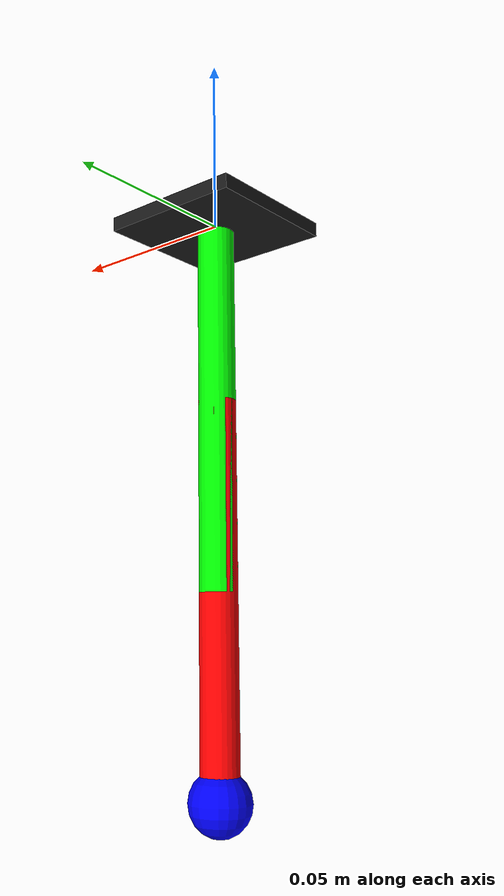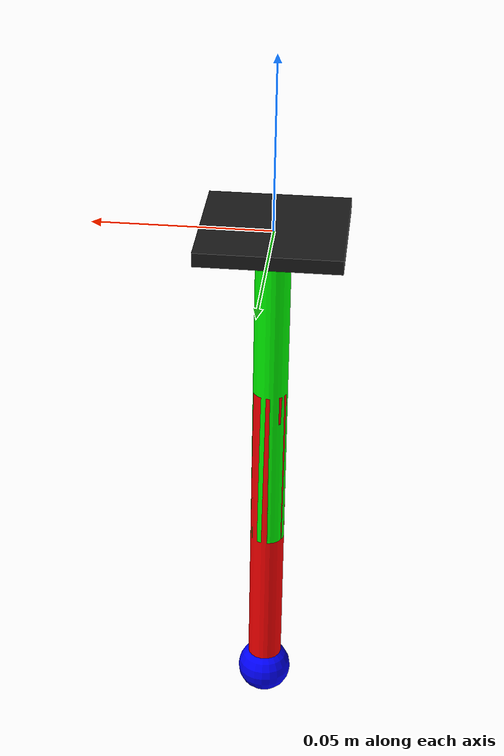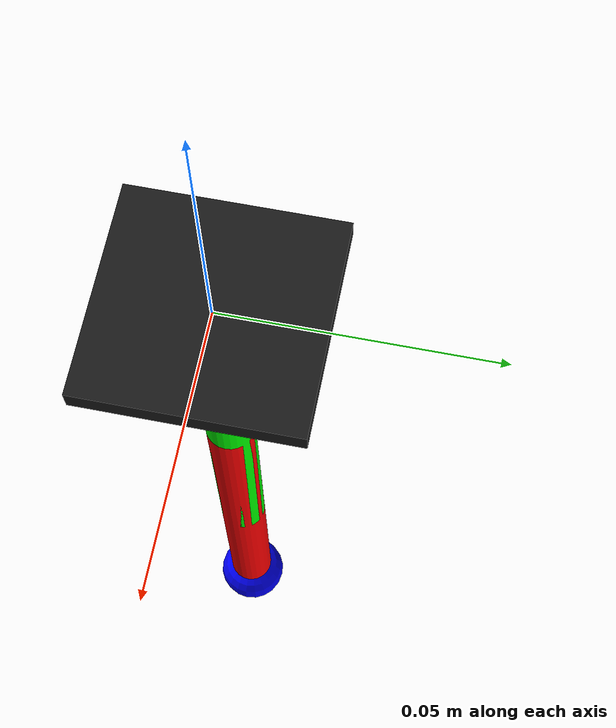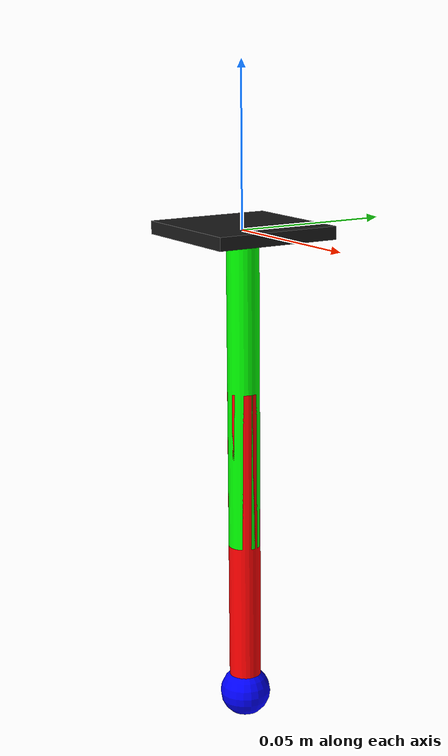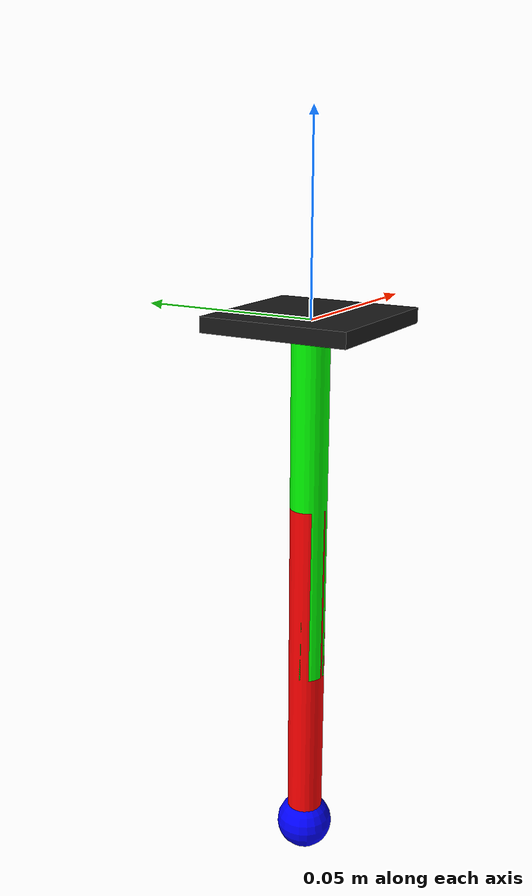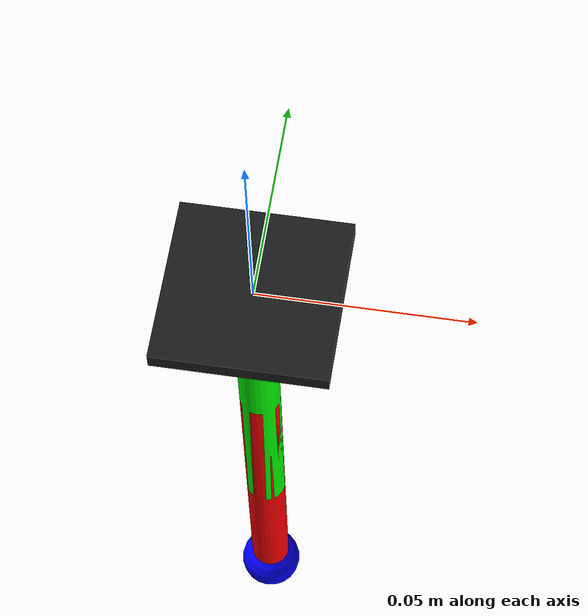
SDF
<sdf version='1.6'>
  <model name='2d_finger'>
    <link name="ground">
      <visual name='ground_visual'>
        <pose>0 0 0 0 0 0</pose>
        <geometry>
          <box>
            <size>0.04 0.04 0.004</size>
          </box>
        </geometry>
        <material>
          <diffuse>0.1 0.1 0.1 1</diffuse>
        </material>
      </visual>
    </link>
    <link name='Link1'>
      <pose>0 0 0 0 0 0</pose>
      <inertial>
        <pose>0 0 -0.05 0 0 0</pose>
        <mass>0.1</mass>
        <inertia>
          <ixx>0.0083</ixx><iyy>0.0083</iyy><izz>5e-7</izz>
          <ixy>0</ixy><ixz>0</ixz><iyz>0</iyz>
        </inertia>
      </inertial>
      <visual name='Link1_visual'>
        <pose>0 0 -0.05 0 0 0</pose>
        <geometry>
          <cylinder>
            <length>0.1</length>
            <radius>0.005</radius>
          </cylinder>
        </geometry>
        <material>
          <diffuse>0 1 0 1</diffuse>
        </material>
      </visual>
    </link>
    <joint name='ShoulderJoint' type='revolute'>
      <child>Link1</child>
      <parent>ground</parent>
      <axis>
        <xyz>1 0 0</xyz>
        <limit>
          <!-- Drake parses a zero effort joint as an un-actuated joint. -->
          <effort>100</effort>
          <lower>-1.57</lower>
          <upper>1.57</upper>
        </limit>
        <dynamics>
          <damping>0.1</damping>
        </dynamics>
        <use_parent_model_frame>1</use_parent_model_frame>
      </axis>
    </joint>
    <link name='Link2'>
      <!-- The origin of the Link2 frame is defined to be coincident with
           the origin of the x-z plane in the elbow joint frame. -->
      <pose>0 0 -0.05 0 0 0</pose>
      <inertial>
        <pose>0 0 -0.05 0 0 0</pose>
        <mass>0.1</mass>
        <!-- This inertia is based on a solid cylinder with
             radius=1.0 meters and height=2.0 meters. -->
        <!-- For this model we could make izz = 0 however, sdformat will throw
             an exception. -->
        <inertia>
          <ixx>0.0083</ixx><iyy>0.0083</iyy><izz>5e-7</izz>
          <ixy>0</ixy><ixz>0</ixz><iyz>0</iyz>
        </inertia>
      </inertial>
      <visual name='Link2_visual'>
        <pose>0 0 -0.05 0 0 0</pose>
        <geometry>
          <cylinder>
            <length>0.1</length>
            <radius>0.005</radius>
          </cylinder>
        </geometry>
        <material>
          <diffuse>1 0 0 1</diffuse>
        </material>
      </visual>
      <collision name='Link2_pad_collision'>
        <pose>0 0 -0.1 0 0 0</pose>
        <geometry>
          <sphere>
            <radius>0.008</radius>
          </sphere>
        </geometry>
      </collision>
      <visual name='Link2_pad_visual'>
        <pose>0 0 -0.1 0 0 0</pose>
        <geometry>
          <sphere>
            <radius>0.008</radius>
          </sphere>
        </geometry>
        <material>
          <diffuse>0 0 1 1</diffuse>
        </material>
      </visual>
    </link>
    <joint name='ElbowJoint' type='prismatic'>
      <parent>Link1</parent>
      <child>Link2</child>
      <!-- Pose X_CJ of the joint frame J in the frame C of the child link -->
      <pose>0 0 0 0 0 0</pose>
      <axis>
        <xyz>0 0 1</xyz>
        <limit>
          <effort>100</effort>
          <!-- No limit provided. sdformat defaults to -1, which we parse as
               an actuated joint. -->
          <lower>-0.05</lower>
          <upper>0.05</upper>
        </limit>
        <dynamics>
          <damping>0.1</damping>
        </dynamics>
        <use_parent_model_frame>1</use_parent_model_frame>
      </axis>
    </joint>
  </model>
</sdf>
